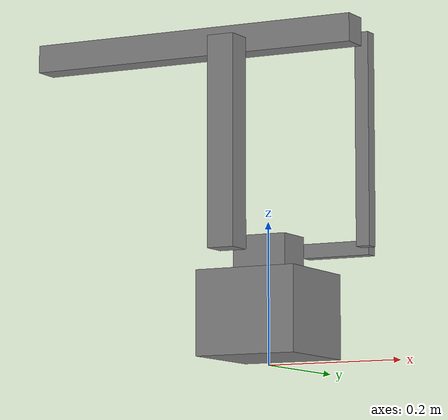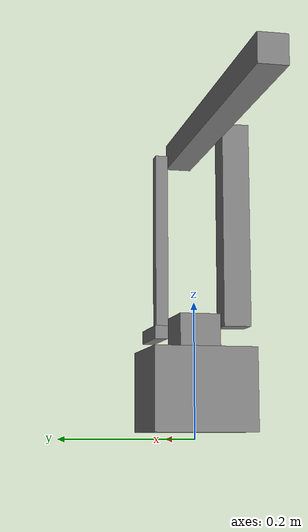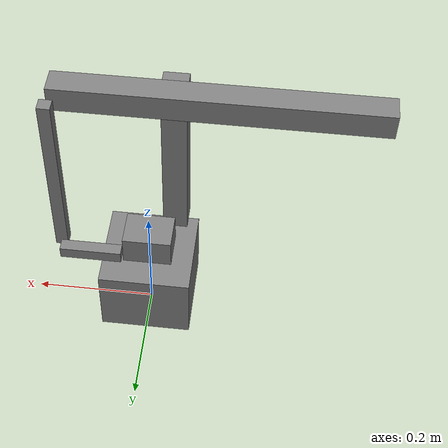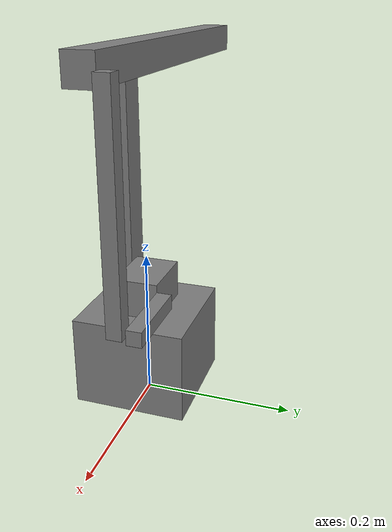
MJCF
<mujoco model="hand_controller">
  <compiler angle="radian"/>

  <worldbody>
    <geom type="plane" size="10 10 0.1" pos="0 0 -2" rgba=".9 0 0 1" />
        <light diffuse=".5 .5 .5" pos="0 0 3" dir="0 0 -1" />
    <body name="body_link" pos="0 0 0.01">
      <inertial pos="0 0 0.05" quat="0.49791 0.501952 -0.501894 0.49823" mass="2.5" diaginertia="0.00215505 0.0014545 0.00134495"/>
      <joint name="base_joint" pos="0 0 0" axis="0 0 1" range="-3.14 3.14"/>
      <geom size="0.075 0.075 0.06" pos="0 0 0.06" type="box"/>
      <geom size="0.04 0.03 0.03" pos="0 0 0.14" type="box"/>
      <body name="capstan_link" pos="0.04 0.03 0.15">
        <inertial pos="0.05 0 0" quat="0.49791 0.501952 -0.501894 0.49823" mass="0.25" diaginertia="0.00215505 0.0014545 0.00134495"/>
        <joint name="capstan_joint" pos="0 0 0" axis="0 1 0" range="-3.14 3.14"/>
        <geom size="0.05 0.01 0.01" pos="0.05 0.01 0" type="box"/>
        <body name="support_link" pos="0.1 0 0">
          <inertial pos="0 -0.15 0" quat="0.49791 0.501952 -0.501894 0.49823" mass="0.25" diaginertia="0.00215505 0.0014545 0.00134495"/>
          <joint name="support_joint" pos="0 0 0" axis="0 1 0" range="-3.14 3.14"/>
          <geom size="0.01 0.01 0.15" pos="0 -0.01 0.15" type="box"/>
          <body name="forearm_link" pos="0 -0.02 0.3">
            <inertial pos="0.0200234 -0.149299 -0.0899921" quat="0.987443 0.00383494 -0.157927 -0.000421224" mass="0.5" diaginertia="0.00725418 0.0069399 0.00421492"/>
            <joint name="backelbow_joint" pos="0 0 0" axis="0 1 0" range="-3.14 3.14"/>
            <geom size="0.25 0.02 0.02" pos="-0.25 -0.02 0" type="box"/>
          </body>
        </body>
      </body>
      <body name="elbow_link" pos="-0.04 -0.03 0.15">
        <inertial pos="5.69122e-05 -0.299996 -0.00115599" quat="0.49791 0.501952 -0.501894 0.49823" mass="0.5" diaginertia="0.0155601 0.014159 0.0026899"/>
        <joint name="shoulder_joint" pos="0 0 0" axis="0 1 0" range="-3.14 3.14"/>
        <geom size="0.02 0.02 0.15" pos="0 -0.02 0.15" type="box"/>
      </body>
    </body>
  </worldbody>
  <equality>
        <connect name="kinematic_link" active="true" body1="forearm_link" body2="elbow_link" anchor="0 0 4" />
  </equality>

  <actuator>
    <position joint="shoulder_joint" ctrlrange="-10 10" ctrllimited="true" kp="5"/>
    <position joint="capstan_joint" ctrlrange="-10 10" ctrllimited="true" kp="5"/>
  </actuator>
</mujoco>
